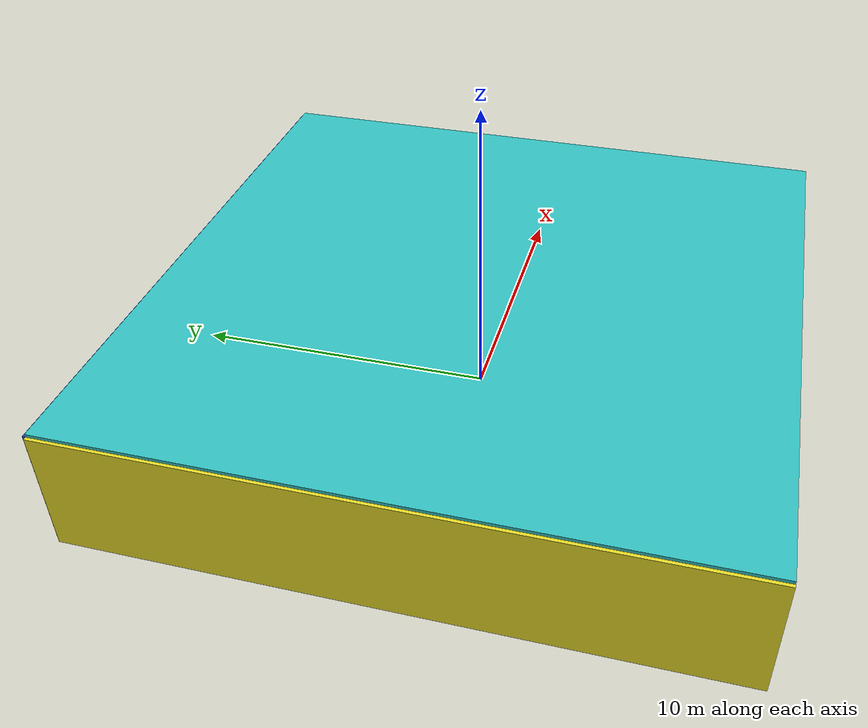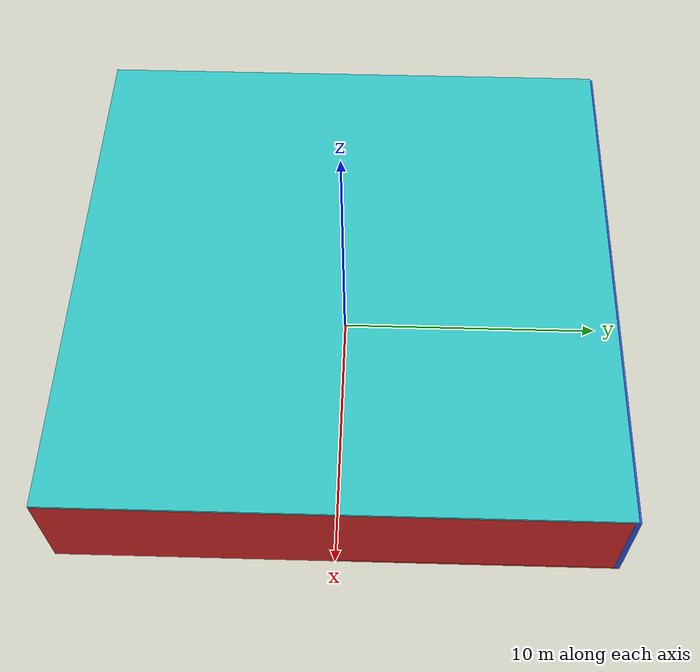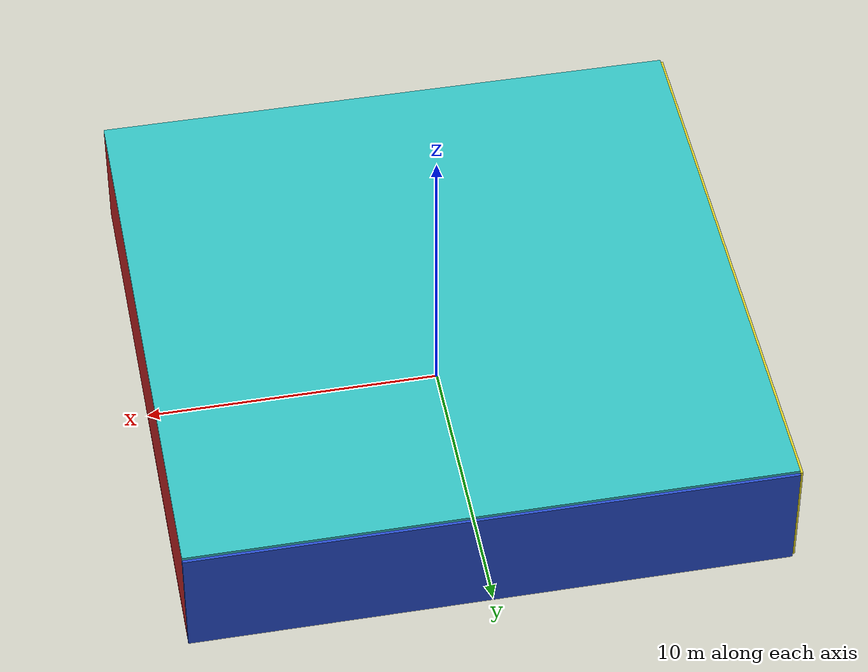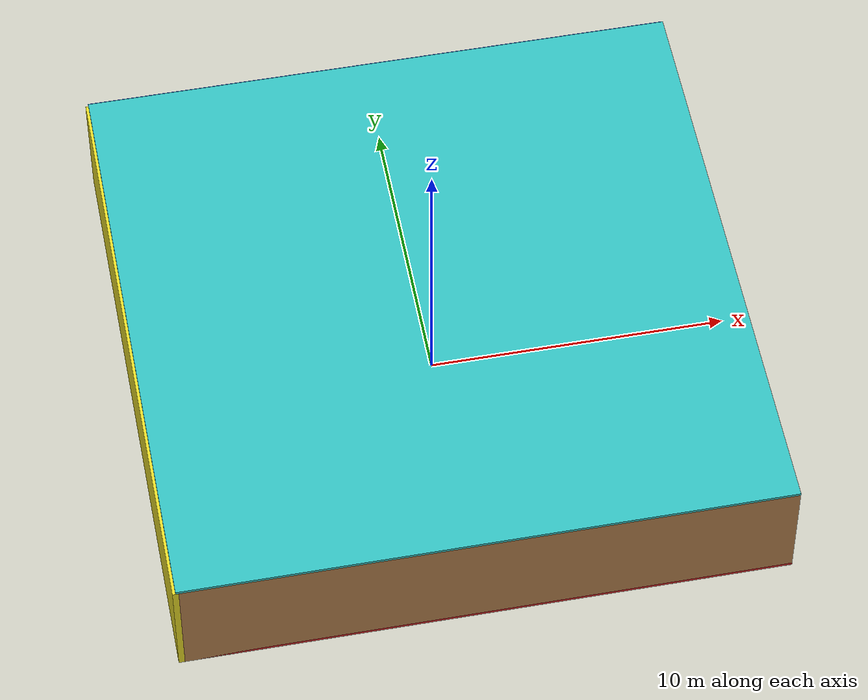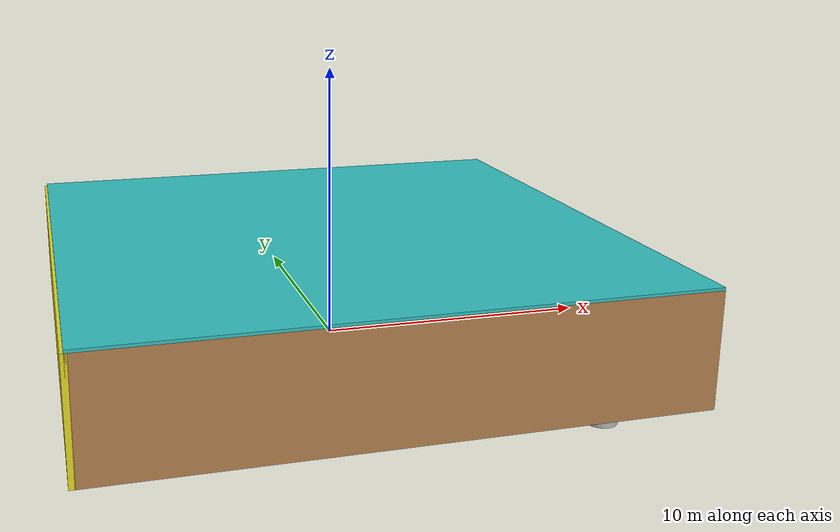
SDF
<sdf version="1.4">
 <world name="default">
  <physics type="ode">
   <max_step_size>0.001</max_step_size>
   <real_time_factor>1</real_time_factor>
   <real_time_update_rate>1000</real_time_update_rate>
   <gravity>0 0 -9.8</gravity>
  </physics>
  <scene><ambient>0.4 0.4 0.4 1</ambient><background>0.7 0.7 0.7 1</background><shadows>1</shadows></scene>
  <model name="Surrounding">
   <static>1</static>
   <link name="Ceiling">
    <collision name="Ceiling_Collision"><geometry><box><size>20 20 0.1</size></box></geometry></collision>
    <visual name="Ceiling_Visual">
     <geometry><box><size>20 20 0.1</size></box></geometry>
     <material>
      <script>
       <uri>file://media/materials/scripts/gazebo.material</uri>
       <name>Gazebo/TurquoiseGlowOutline</name>
      </script>
     </material>
    </visual>
    <pose>0 0 4.05 0 0 0</pose>
   </link>
   <link name="Wall_South">
    <collision name="Wall_South_Collision">
     <geometry><box><size>20 0 4</size></box></geometry>
     <pose>0 0 2 0 -0 0</pose>
    </collision>
    <visual name="Wall_South_Visual">
     <pose>0 0 2 0 -0 0</pose>
     <geometry><box><size>20 0 4</size></box></geometry>
     <material>
      <script><uri>file://media/materials/scripts/gazebo.material</uri><name>Gazebo/WoodPallet</name></script>
     </material>
    </visual>
    <velocity_decay><linear>0</linear><angular>0</angular></velocity_decay>
    <pose>0 -10 0 0 -0 0</pose>
   </link>
   <link name="Wall_East">
    <collision name="Wall_21_Collision">
     <geometry><box><size>20 0 4</size></box></geometry>
     <pose>0 0 2 0 -0 0</pose>
    </collision>
    <visual name="Wall_21_Visual">
     <pose>0 0 2 0 -0 0</pose>
     <geometry><box><size>20 0 4</size></box></geometry>
     <material>
      <script><uri>file://media/materials/scripts/gazebo.material</uri><name>Gazebo/Red</name></script>
     </material>
    </visual>
    <velocity_decay><linear>0</linear><angular>0</angular></velocity_decay>
    <pose>10 0 0 0 -0 1.5708</pose>
   </link>
   <link name="Wall_North">
    <collision name="Wall_22_Collision">
     <geometry><box><size>20 0.2 4</size></box></geometry>
     <pose>0 0 2 0 -0 0</pose>
    </collision>
    <visual name="Wall_22_Visual">
     <pose>0 0 2 0 -0 0</pose>
     <geometry><box><size>20 0.2 4</size></box></geometry>
     <material>
      <script><uri>file://media/materials/scripts/gazebo.material</uri><name>Gazebo/Blue</name></script>
     </material>
    </visual>
    <velocity_decay><linear>0</linear><angular>0</angular></velocity_decay>
    <pose>0 10 0 0 -0 0</pose>
   </link>
   <link name="Wall_West">
    <collision name="Wall_23_Collision">
     <geometry><box><size>20 0.2 4</size></box></geometry>
     <pose>0 0 2 0 -0 0</pose>
    </collision>
    <visual name="Wall_23_Visual">
     <pose>0 0 2 0 -0 0</pose>
     <geometry><box><size>20 0.2 4</size></box></geometry>
     <material>
      <script><uri>file://media/materials/scripts/gazebo.material</uri><name>Gazebo/Yellow</name></script>
     </material>
    </visual>
    <velocity_decay><linear>0</linear><angular>0</angular></velocity_decay>
    <pose>-10 0 0 0 0 -1.5708</pose>
   </link>
   <link name="Ground_link">
    <collision name="collision">
     <pose>0 0 .05 0 -0 0</pose>
     <geometry><box><size>20 20 0.1</size></box></geometry>
    </collision>
    <visual name="visual">
     <pose>0 0 .05 0 -0 0</pose>
     <geometry><box><size>20 20 0.1</size></box></geometry>
     <material>
      <script><uri>file://media/materials/scripts/gazebo.material</uri><name>Gazebo/Red</name></script>
     </material>
    </visual>
   </link>
   <static>1</static>
  </model>
  <spherical_coordinates>
   <surface_model>EARTH_WGS84</surface_model>
   <latitude_deg>0</latitude_deg>
   <longitude_deg>0</longitude_deg>
   <elevation>0</elevation>
   <heading_deg>0</heading_deg>
  </spherical_coordinates>
  <light name="lightball_0" type="diffuse">
   <diffuse>0.8 0.8 0.8 1</diffuse>
   <specular>0.2 0.2 0.2 1</specular>
   <attenuation>
    <range>100</range>
    <constant>0.7</constant>
    <linear>0.01</linear>
    <quadratic>0.001</quadratic>
   </attenuation>
   <direction>-0.5 0.1 -0.9</direction>
   <pose>8.46653484682 -5.13293713607 0.57749866048 0 0 0</pose>
  </light>
  <light name="lightball_1" type="diffuse">
   <diffuse>0.8 0.8 0.8 1</diffuse>
   <specular>0.2 0.2 0.2 1</specular>
   <attenuation>
    <range>100</range>
    <constant>0.7</constant>
    <linear>0.01</linear>
    <quadratic>0.001</quadratic>
   </attenuation>
   <direction>-0.5 0.1 -0.9</direction>
   <pose>-8.78023212565 -3.1197602411 1.96121307327 0 0 0</pose>
  </light>
  <light name="lightball_2" type="diffuse">
   <diffuse>0.8 0.8 0.8 1</diffuse>
   <specular>0.2 0.2 0.2 1</specular>
   <attenuation>
    <range>100</range>
    <constant>0.7</constant>
    <linear>0.01</linear>
    <quadratic>0.001</quadratic>
   </attenuation>
   <direction>-0.5 0.1 -0.9</direction>
   <pose>-2.59917015827 -4.54551207428 2.04749686635 0 0 0</pose>
  </light>
  <light name="lightball_3" type="diffuse">
   <diffuse>0.8 0.8 0.8 1</diffuse>
   <specular>0.2 0.2 0.2 1</specular>
   <attenuation>
    <range>100</range>
    <constant>0.7</constant>
    <linear>0.01</linear>
    <quadratic>0.001</quadratic>
   </attenuation>
   <direction>-0.5 0.1 -0.9</direction>
   <pose>3.79388537251 5.25434932465 2.68199427989 0 0 0</pose>
  </light>
  <light name="lightball_4" type="diffuse">
   <diffuse>0.8 0.8 0.8 1</diffuse>
   <specular>0.2 0.2 0.2 1</specular>
   <attenuation>
    <range>100</range>
    <constant>0.7</constant>
    <linear>0.01</linear>
    <quadratic>0.001</quadratic>
   </attenuation>
   <direction>-0.5 0.1 -0.9</direction>
   <pose>-3.84869221263 3.8638254803 1.15986220504 0 0 0</pose>
  </light>
  <light name="lightball_5" type="diffuse">
   <diffuse>0.8 0.8 0.8 1</diffuse>
   <specular>0.2 0.2 0.2 1</specular>
   <attenuation>
    <range>100</range>
    <constant>0.7</constant>
    <linear>0.01</linear>
    <quadratic>0.001</quadratic>
   </attenuation>
   <direction>-0.5 0.1 -0.9</direction>
   <pose>-3.31873630093 -7.03510203477 3.47139914537 0 0 0</pose>
  </light>
  <light name="lightball_6" type="diffuse">
   <diffuse>0.8 0.8 0.8 1</diffuse>
   <specular>0.2 0.2 0.2 1</specular>
   <attenuation>
    <range>100</range>
    <constant>0.7</constant>
    <linear>0.01</linear>
    <quadratic>0.001</quadratic>
   </attenuation>
   <direction>-0.5 0.1 -0.9</direction>
   <pose>-5.68596084014 5.72662809311 2.85093436098 0 0 0</pose>
  </light>
  <light name="lightball_7" type="diffuse">
   <diffuse>0.8 0.8 0.8 1</diffuse>
   <specular>0.2 0.2 0.2 1</specular>
   <attenuation>
    <range>100</range>
    <constant>0.7</constant>
    <linear>0.01</linear>
    <quadratic>0.001</quadratic>
   </attenuation>
   <direction>-0.5 0.1 -0.9</direction>
   <pose>-5.8221163465 4.0006906509 0.655658153293 0 0 0</pose>
  </light>
  <light name="lightball_8" type="diffuse">
   <diffuse>0.8 0.8 0.8 1</diffuse>
   <specular>0.2 0.2 0.2 1</specular>
   <attenuation>
    <range>100</range>
    <constant>0.7</constant>
    <linear>0.01</linear>
    <quadratic>0.001</quadratic>
   </attenuation>
   <direction>-0.5 0.1 -0.9</direction>
   <pose>-9.41260148693 9.24594450209 2.36510168195 0 0 0</pose>
  </light>
  <light name="lightball_9" type="diffuse">
   <diffuse>0.8 0.8 0.8 1</diffuse>
   <specular>0.2 0.2 0.2 1</specular>
   <attenuation>
    <range>100</range>
    <constant>0.7</constant>
    <linear>0.01</linear>
    <quadratic>0.001</quadratic>
   </attenuation>
   <direction>-0.5 0.1 -0.9</direction>
   <pose>-6.07253559788 7.3608239764 2.47586623831 0 0 0</pose>
  </light>
  <light name="lightball_10" type="diffuse">
   <diffuse>0.8 0.8 0.8 1</diffuse>
   <specular>0.2 0.2 0.2 1</specular>
   <attenuation>
    <range>100</range>
    <constant>0.7</constant>
    <linear>0.01</linear>
    <quadratic>0.001</quadratic>
   </attenuation>
   <direction>-0.5 0.1 -0.9</direction>
   <pose>7.85118190978 7.54595919132 1.63975032879 0 0 0</pose>
  </light>
  <light name="lightball_11" type="diffuse">
   <diffuse>0.8 0.8 0.8 1</diffuse>
   <specular>0.2 0.2 0.2 1</specular>
   <attenuation>
    <range>100</range>
    <constant>0.7</constant>
    <linear>0.01</linear>
    <quadratic>0.001</quadratic>
   </attenuation>
   <direction>-0.5 0.1 -0.9</direction>
   <pose>-4.9883517418 1.58612255333 3.83467547296 0 0 0</pose>
  </light>
  <include><uri>model://cabinet</uri><pose>-7.67234940584 -5.27918243631 0 0 0 0.113278332041</pose></include>
  <include>
   <uri>model://robocup_3Dsim_goal</uri>
   <pose>-6.75021166158 -0.920188044016 0 0 0 2.34974535812</pose>
  </include>
  <include>
   <uri>model://robocup_3Dsim_goal</uri>
   <pose>-8.23005484307 2.08071612015 0 0 0 1.57469611486</pose>
  </include>
  <include>
   <uri>model://robocup_3Dsim_goal</uri>
   <pose>-3.86242244566 1.54459362718 0 0 0 2.40122469722</pose>
  </include>
  <include>
   <uri>model://construction_cone</uri>
   <pose>0.93957223514 -4.61059196212 0 0 0 1.04163434733</pose>
  </include>
  <include>
   <uri>model://robocup_3Dsim_goal</uri>
   <pose>1.13686536224 7.65068580805 0 0 0 0.425981503481</pose>
  </include>
  <include>
   <uri>model://textured_shapes</uri>
   <pose>5.29071871052 1.43523053641 0 0 0 0.222344790506</pose>
  </include>
  <include>
   <uri>model://textured_shapes</uri>
   <pose>7.23335045264 -7.54558499583 0 0 0 2.72929632782</pose>
  </include>
  <include><uri>model://cabinet</uri><pose>7.77194566263 -3.75230709484 0 0 0 0.513762469336</pose></include>
 </world>
</sdf>

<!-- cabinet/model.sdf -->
<sdf version="1.5">
  <model name="cabinet">
    <static>true</static>
    <link name="cabinet_bottom_plate">
      <inertial>
        <pose>0 0 -1 0 0 0</pose>
        <inertia>
          <ixx>2.050000</ixx>
          <ixy>0</ixy>
          <ixz>0</ixz>
          <iyy>2.050000</iyy>
          <iyz>0</iyz>
          <izz>2.050000</izz>
        </inertia>
        <mass>25.000000</mass>
      </inertial>
      <collision name="cabinet_bottom_plate_geom">
        <pose>0 0 0.010000 0 0 0</pose>
        <geometry>
          <box>
            <size>0.450000 0.450000 0.020000</size>
          </box>
        </geometry>
      </collision>
      <visual name="cabinet_bottom_plate_geom_visual">
        <pose>0 0 0.010000 0 0 0</pose>
        <geometry>
          <box>
            <size>0.450000 0.450000 0.020000</size>
          </box>
        </geometry>
        <material>
          <script>
            <uri>model://media/materials/scripts/gazebo.material</uri>
            <name>Gazebo/Wood</name>
          </script>
        </material>
      </visual>
      <collision name="cabinet_bottom_plate_geom_cabinet_back_plate">
        <pose>0.235000 0 0.510000 0 0 0</pose>
        <geometry>
          <box>
            <size>0.020000 0.450000 1.020000</size>
          </box>
        </geometry>
      </collision>
      <visual name="cabinet_bottom_plate_geom_cabinet_back_plate_visual">
        <pose>0.235000 0 0.510000 0 0 0</pose>
        <geometry>
          <box>
            <size>0.020000 0.450000 1.020000</size>
          </box>
        </geometry>
        <material>
          <script>
            <uri>model://media/materials/scripts/gazebo.material</uri>
            <name>Gazebo/Wood</name>
          </script>
        </material>
      </visual>
      <collision name="cabinet_bottom_plate_geom_cabinet_left_plate">
        <pose>0 0.235000 0.510000 0 0 0</pose>
        <geometry>
          <box>
            <size>0.450000 0.020000 1.020000</size>
          </box>
        </geometry>
      </collision>
      <visual name="cabinet_bottom_plate_geom_cabinet_left_plate_visual">
        <pose>0 0.235000 0.510000 0 0 0</pose>
        <geometry>
          <box>
            <size>0.450000 0.020000 1.020000</size>
          </box>
        </geometry>
        <material>
          <script>
            <uri>model://media/materials/scripts/gazebo.material</uri>
            <name>Gazebo/Wood</name>
          </script>
        </material>
      </visual>
      <collision name="cabinet_bottom_plate_geom_cabinet_middle_plate">
        <pose>0 0 0.510000 0 0 0</pose>
        <geometry>
          <box>
            <size>0.450000 0.450000 0.020000</size>
          </box>
        </geometry>
      </collision>
      <visual name="cabinet_bottom_plate_geom_cabinet_middle_plate_visual">
        <pose>0 0 0.510000 0 0 0</pose>
        <geometry>
          <box>
            <size>0.450000 0.450000 0.020000</size>
          </box>
        </geometry>
        <material>
          <script>
            <uri>model://media/materials/scripts/gazebo.material</uri>
            <name>Gazebo/Wood</name>
          </script>
        </material>
      </visual>
      <collision name="cabinet_bottom_plate_geom_cabinet_right_plate">
        <pose>0 -0.235000 0.510000 0 0 0</pose>
        <geometry>
          <box>
            <size>0.450000 0.020000 1.020000</size>
          </box>
        </geometry>
      </collision>
      <visual name="cabinet_bottom_plate_geom_cabinet_right_plate_visual">
        <pose>0 -0.235000 0.510000 0 0 0</pose>
        <geometry>
          <box>
            <size>0.450000 0.020000 1.020000</size>
          </box>
        </geometry>
        <material>
          <script>
            <uri>model://media/materials/scripts/gazebo.material</uri>
            <name>Gazebo/Wood</name>
          </script>
        </material>
      </visual>
      <collision name="cabinet_bottom_plate_geom_cabinet_top_plate">
        <pose>0 0 1.010000 0 0 0</pose>
        <geometry>
          <box>
            <size>0.450000 0.450000 0.020000</size>
          </box>
        </geometry>
      </collision>
      <visual name="cabinet_bottom_plate_geom_cabinet_top_plate_visual">
        <pose>0 0 1.010000 0 0 0</pose>
        <geometry>
          <box>
            <size>0.450000 0.450000 0.020000</size>
          </box>
        </geometry>
        <material>
          <script>
            <uri>model://media/materials/scripts/gazebo.material</uri>
            <name>Gazebo/Wood</name>
          </script>
        </material>
      </visual>
    </link>
  </model>
</sdf>

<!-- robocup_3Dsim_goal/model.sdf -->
<sdf version="1.5">
  <model name="robocup_3d_goal">
    <static>true</static>
    <link name="left_post">
      <pose>0 1.05 0.45 0 0 0</pose>
      <collision name="collision">
        <geometry>
          <cylinder>
            <radius>0.05</radius>
            <length>0.9</length>
          </cylinder>
        </geometry>
      </collision>
      <visual name="visual">
        <geometry>
          <cylinder>
            <radius>0.05</radius>
            <length>0.9</length>
          </cylinder>
        </geometry>
        <material>
          <script>
            <uri>file://media/materials/scripts/gazebo.material</uri>
            <name>Gazebo/ZincYellow</name>
          </script>
        </material>
      </visual>
    </link>
    <link name="left_support_horiz_lower">
      <pose>0.30 1.05 0.01 0 0 0</pose>
      <collision name="collision">
        <geometry>
          <box>
            <size>0.50 0.02 0.02</size>
          </box>
        </geometry>
      </collision>
      <visual name="visual">
        <geometry>
          <box>
            <size>0.50 0.02 0.02</size>
          </box>
        </geometry>
        <material>
          <script>
            <uri>file://media/materials/scripts/gazebo.material</uri>
            <name>Gazebo/White</name>
          </script>
        </material>
      </visual>
    </link>
    <link name="left_support_horiz_upper">
      <pose>0.30 1.05 0.79 0 0 0</pose>
      <collision name="collision">
        <geometry>
          <box>
            <size>0.50 0.02 0.02</size>
          </box>
        </geometry>
      </collision>
      <visual name="visual">
        <geometry>
          <box>
            <size>0.50 0.02 0.02</size>
          </box>
        </geometry>
        <material>
          <script>
            <uri>file://media/materials/scripts/gazebo.material</uri>
            <name>Gazebo/White</name>
          </script>
        </material>
      </visual>
    </link>
    <link name="left_support_vertical">
      <pose>0.56 1.05 0.4 0 1.5708 0</pose>
      <collision name="collision">
        <geometry>
          <box>
            <size>0.80 0.02 0.02</size>
          </box>
        </geometry>
      </collision>
      <visual name="visual">
        <geometry>
          <box>
            <size>0.80 0.02 0.02</size>
          </box>
        </geometry>
        <material>
          <script>
            <uri>file://media/materials/scripts/gazebo.material</uri>
            <name>Gazebo/White</name>
          </script>
        </material>
      </visual>
    </link>
    <link name="right_support_horiz_lower">
      <pose>0.30 -1.05 0.01 0 0 0</pose>
      <collision name="collision">
        <geometry>
          <box>
            <size>0.50 0.02 0.02</size>
          </box>
        </geometry>
      </collision>
      <visual name="visual">
        <geometry>
          <box>
            <size>0.50 0.02 0.02</size>
          </box>
        </geometry>
        <material>
          <script>
            <uri>file://media/materials/scripts/gazebo.material</uri>
            <name>Gazebo/White</name>
          </script>
        </material>
      </visual>
    </link>
    <link name="right_support_horiz_upper">
      <pose>0.30 -1.05 0.79 0 0 0</pose>
      <collision name="collision">
        <geometry>
          <box>
            <size>0.50 0.02 0.02</size>
          </box>
        </geometry>
      </collision>
      <visual name="visual">
        <geometry>
          <box>
            <size>0.50 0.02 0.02</size>
          </box>
        </geometry>
        <material>
          <script>
            <uri>file://media/materials/scripts/gazebo.material</uri>
            <name>Gazebo/White</name>
          </script>
        </material>
      </visual>
    </link>
    <link name="right_support_vertical">
      <pose>0.56 -1.05 0.4 0 1.5708 0</pose>
      <collision name="collision">
        <geometry>
          <box>
            <size>0.80 0.02 0.02</size>
          </box>
        </geometry>
      </collision>
      <visual name="visual">
        <geometry>
          <box>
            <size>0.80 0.02 0.02</size>
          </box>
        </geometry>
        <material>
          <script>
            <uri>file://media/materials/scripts/gazebo.material</uri>
            <name>Gazebo/White</name>
          </script>
        </material>
      </visual>
    </link>
    <link name="center_support_horiz_lower">
      <pose>0.56 0 0.01 0 1.5708 0</pose>
      <collision name="collision">
        <geometry>
          <box>
            <size>0.02 2.08 0.02</size>
          </box>
        </geometry>
      </collision>
      <visual name="visual">
        <geometry>
          <box>
            <size>0.02 2.08 0.02</size>
          </box>
        </geometry>
        <material>
          <script>
            <uri>file://media/materials/scripts/gazebo.material</uri>
            <name>Gazebo/White</name>
          </script>
        </material>
      </visual>
    </link>
    <link name="center_support_horiz_upper">
      <pose>0.56 0 0.79 0 1.5708 0</pose>
      <collision name="collision">
        <geometry>
          <box>
            <size>0.02 2.08 0.02</size>
          </box>
        </geometry>
      </collision>
      <visual name="visual">
        <geometry>
          <box>
            <size>0.02 2.08 0.02</size>
          </box>
        </geometry>
        <material>
          <script>
            <uri>file://media/materials/scripts/gazebo.material</uri>
            <name>Gazebo/White</name>
          </script>
        </material>
      </visual>
    </link>
    <link name="right_post">
      <pose>0 -1.05 0.45 0 0 0</pose>
      <collision name="collision">
        <geometry>
          <cylinder>
            <radius>0.05</radius>
            <length>0.9</length>
          </cylinder>
        </geometry>
      </collision>
      <visual name="visual">
        <geometry>
          <cylinder>
            <radius>0.05</radius>
            <length>0.9</length>
          </cylinder>
        </geometry>
        <material>
          <script>
            <uri>file://media/materials/scripts/gazebo.material</uri>
            <name>Gazebo/ZincYellow</name>
          </script>
        </material>
      </visual>
    </link>
    <link name="crossbar">
      <pose>0 0 0.85 1.57 1.57 0</pose>
      <collision name="collision">
        <geometry>
          <cylinder>
            <radius>0.05</radius>
            <length>2.0</length>
          </cylinder>
        </geometry>
      </collision>
      <visual name="visual">
        <geometry>
          <cylinder>
            <radius>0.05</radius>
            <length>2.0</length>
          </cylinder>
        </geometry>
        <material>
          <script>
            <uri>file://media/materials/scripts/gazebo.material</uri>
            <name>Gazebo/ZincYellow</name>
          </script>
        </material>
      </visual>
    </link>
    <link name="center_net">
      <pose>0.56 0 0.40 0 0 0</pose>
      <collision name="collision">
        <geometry>
          <box>
            <size>0.01 2.1 0.80</size>
          </box>
        </geometry>
      </collision>
      <visual name="visual">
        <geometry>
          <box>
            <size>0.01 2.1 0.80</size>
          </box>
        </geometry>
        <material>
          <script>
            <uri>model://../model_source/models/robocup09_spl_field/materials/scripts/</uri>
            <uri>model://../model_source/models/robocup09_spl_field/materials/textures/</uri>
            <name>RoboCup/Net</name>
          </script>
        </material>
      </visual>
    </link>
    <link name="left_net">
      <pose>0.30 1.05 0.40 0 0 0</pose>
      <collision name="collision">
        <geometry>
          <box>
            <size>0.50 0.01 0.76</size>
          </box>
        </geometry>
      </collision>
      <visual name="visual">
        <geometry>
          <box>
            <size>0.50 0.01 0.76</size>
          </box>
        </geometry>
        <material>
          <script>
            <uri>model://../model_source/models/robocup09_spl_field/materials/scripts/</uri>
            <uri>model://../model_source/models/robocup09_spl_field/materials/textures/</uri>
            <name>RoboCup/Net</name>
          </script>
        </material>
      </visual>
    </link>
    <link name="right_net">
      <pose>0.30 -1.05 0.40 0 0 0</pose>
      <collision name="collision">
        <geometry>
          <box>
            <size>0.50 0.01 0.76</size>
          </box>
        </geometry>
      </collision>
      <visual name="visual">
        <geometry>
          <box>
            <size>0.50 0.01 0.76</size>
          </box>
        </geometry>
        <material>
          <script>
            <uri>model://../model_source/models/robocup09_spl_field/materials/scripts/</uri>
            <uri>model://../model_source/models/robocup09_spl_field/materials/textures/</uri>
            <name>RoboCup/Net</name>
          </script>
        </material>
      </visual>
    </link>
  </model>
</sdf>

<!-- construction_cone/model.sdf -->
<sdf version="1.5">
  <model name="Construction Cone">
    <link name="link">
      <collision name="collision">
        <geometry>
          <mesh>
            <scale>10 10 10</scale>
            <uri>file://isr-testbed/construction_cone/meshes/construction_cone.dae</uri>
          </mesh>
        </geometry>
      </collision>
      <visual name="visual">
        <geometry>
          <mesh>
            <scale>10 10 10</scale>
            <uri>file://isr-testbed/construction_cone/meshes/construction_cone.dae</uri>
          </mesh>
        </geometry>
      </visual>
    </link>
  </model>
</sdf>

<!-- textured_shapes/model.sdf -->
<sdf version="1.6">
  <model name="textured_shapes">
    <pose>0 0 0.5 0 0 0</pose>
    <link name="box">
      <pose>0 -1.5 0 0 0 0</pose>
      <collision name="collision">
        <geometry>
          <box>
            <size>1 1 1</size>
          </box>
        </geometry>
      </collision>
      <visual name="visual">
        <geometry>
          <box>
            <size>1 1 1</size>
          </box>
        </geometry>
        <material>
          <script>
            <uri>model://../model_source/models/textured_shapes/materials/scripts</uri>
            <uri>model://../model_source/models/textured_shapes/materials/textures</uri>
            <name>TexturedShape/Squares</name>
          </script>
        </material>
      </visual>
    </link>
    <link name="sphere">
      <collision name="collision">
        <geometry>
          <sphere>
            <radius>0.5</radius>
          </sphere>
        </geometry>
      </collision>
      <visual name="visual">
        <geometry>
          <sphere>
            <radius>0.5</radius>
          </sphere>
        </geometry>
        <material>
          <script>
            <uri>model://../model_source/models/textured_shapes/materials/scripts</uri>
            <uri>model://../model_source/models/textured_shapes/materials/textures</uri>
            <name>TexturedShape/Squares</name>
          </script>
        </material>
      </visual>
    </link>
    <link name="cylinder">
      <pose>0 1.5 0 0 0 0</pose>
      <collision name="collision">
        <geometry>
          <cylinder>
            <radius>0.5</radius>
            <length>1</length>
          </cylinder>
        </geometry>
      </collision>
      <visual name="visual">
        <geometry>
          <cylinder>
            <radius>0.5</radius>
            <length>1</length>
          </cylinder>
        </geometry>
        <material>
          <script>
            <uri>model://../model_source/models/textured_shapes/materials/scripts</uri>
            <uri>model://../model_source/models/textured_shapes/materials/textures</uri>
            <name>TexturedShape/Squares</name>
          </script>
        </material>
      </visual>
    </link>
  </model>
</sdf>
